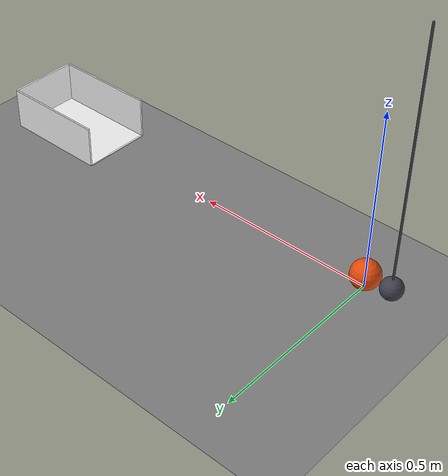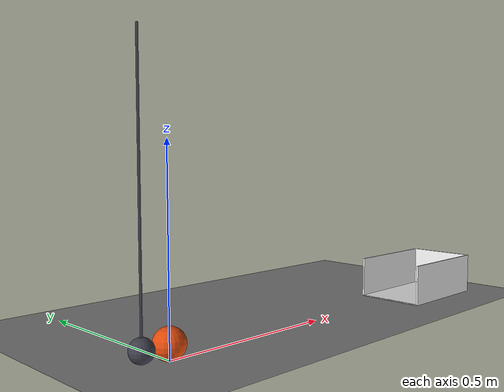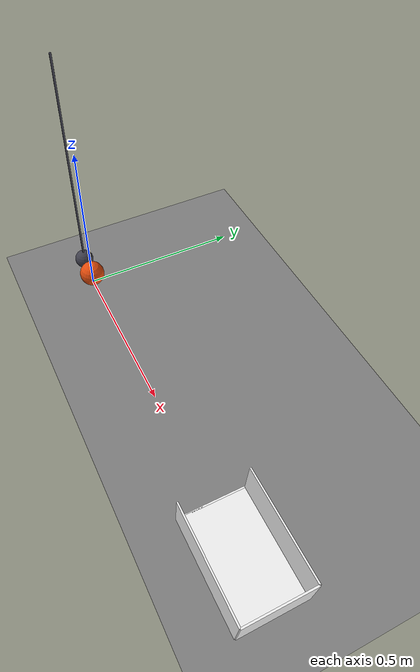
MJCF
<mujoco model="pendulum_rolls_a_ball_into_a_cup">
  <compiler angle="radian"/>
  <option timestep="0.002"/>
  <worldbody>
    <geom name="floor" type="plane" size="4 4 0.1" friction="0.8 0.005 0.0003"/>
    <body name="ball" pos="0 0 0.04">
      <freejoint/>
      <geom name="ball" type="sphere" pos="0 0 0" size="0.04" mass="0.1" condim="6" friction="0.8 0.005 0.0003" solref="0.01 1" rgba="0.9 0.3 0.05 1"/>
    </body>
    <body name="pendulum" pos="-0.075 0 0.74">
      <joint name="pendulum_hinge" type="hinge" pos="0 0 0" axis="0 1 0" limited="true" range="-0.698132 0.698132" damping="0.01"/>
      <geom name="pendulum" type="sphere" pos="0 0 -0.7" size="0.03" mass="0.25" solref="0.01 1" rgba="0.25 0.25 0.3 1"/>
      <geom name="pendulum rod" type="capsule" size="0.003" fromto="0 0 0 0 0 -0.67" mass="0.025" rgba="0.25 0.25 0.3 1"/>
    </body>
    <body name="cup">
      <geom name="cup_base" type="box" pos="1 0 0.001" size="0.15 0.1 0.001" friction="0.8 0.01 0.008" solref="0.01 1" rgba="0.95 0.95 0.95 1"/>
      <geom name="cup_near_wall" type="box" pos="0.85 0 0.001" size="0.0025 0.1 0.001" friction="0.8 0.01 0.008" solref="0.01 1" rgba="0.95 0.95 0.95 1"/>
      <geom name="cup_far_wall" type="box" pos="1.15 0 0.06" size="0.0025 0.1 0.06" friction="0.8 0.01 0.008" solref="0.01 1" rgba="0.95 0.95 0.95 1"/>
      <geom name="cup_left_wall" type="box" pos="1 0.1 0.06" size="0.15 0.0025 0.06" friction="0.8 0.01 0.008" solref="0.01 1" rgba="0.95 0.95 0.95 1"/>
      <geom name="cup_right_wall" type="box" pos="1 -0.1 0.06" size="0.15 0.0025 0.06" friction="0.8 0.01 0.008" solref="0.01 1" rgba="0.95 0.95 0.95 1"/>
    </body>
  </worldbody>
  <keyframe>
    <key name="start" qpos="0 0 0.04 1 0 0 0 0.523599" qvel="0 0 0 0 0 0 0"/>
  </keyframe>
</mujoco>
